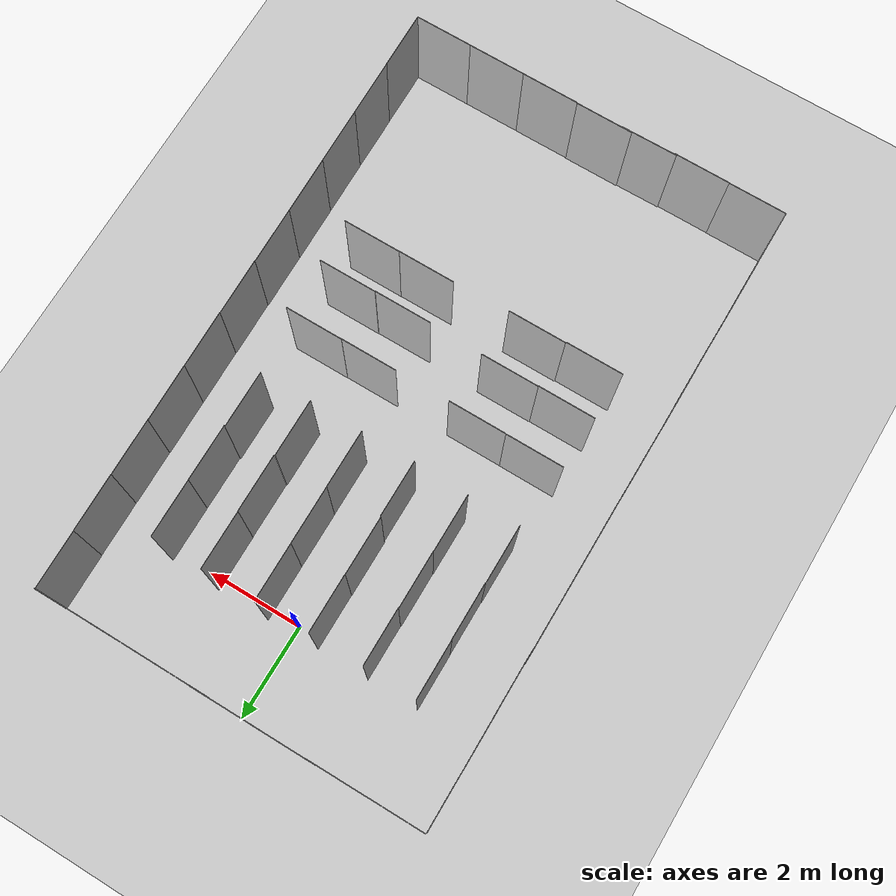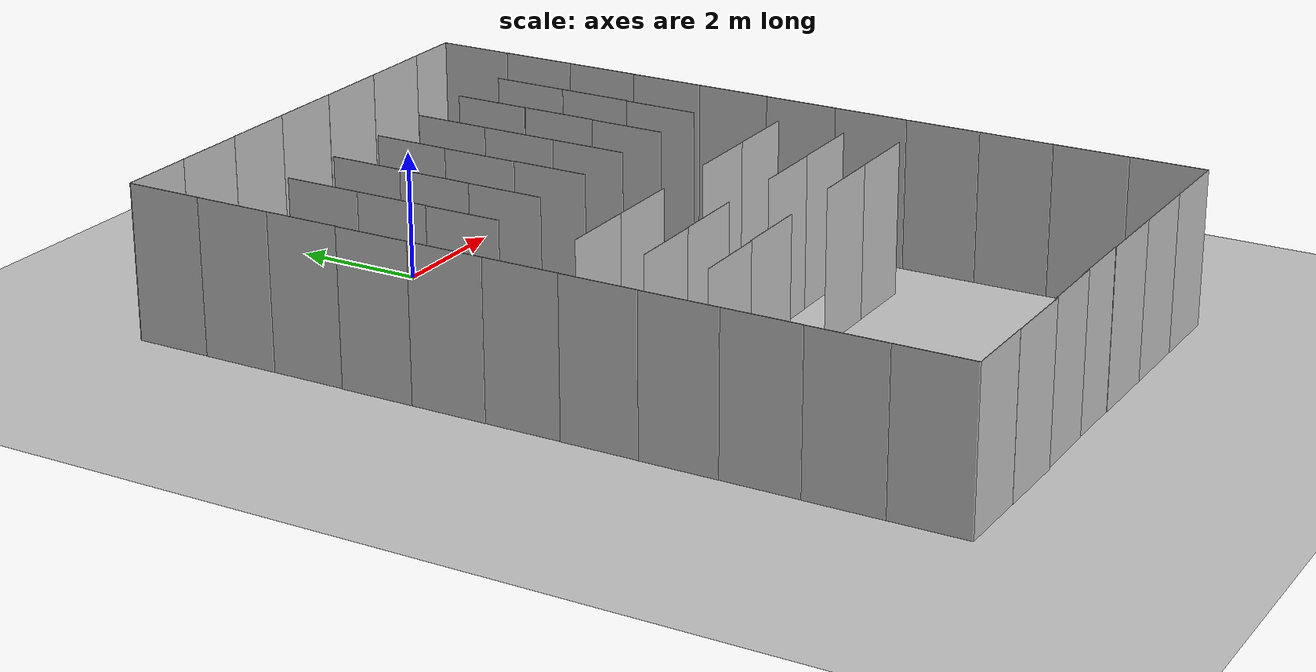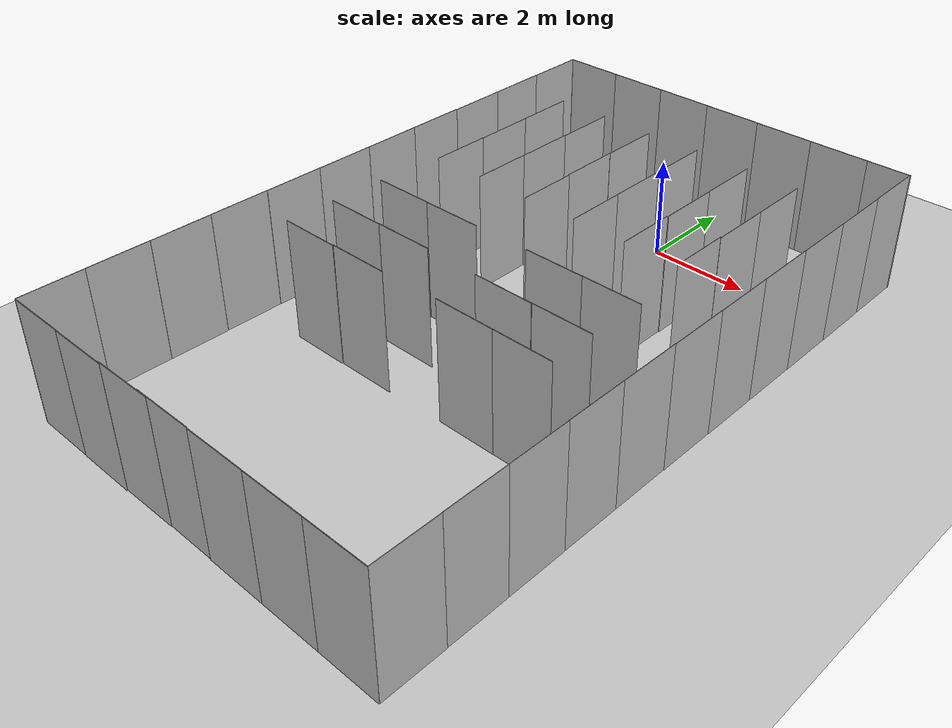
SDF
<sdf version="1.6">
 <world name="default">
  <light name="sun" type="directional">
   <pose>0 0 10 0 -0 0</pose>
   <diffuse>0.8 0.8 0.8 1</diffuse>
   <specular>0.2 0.2 0.2 1</specular>
   <attenuation>
    <range>1000</range>
    <constant>0.9</constant>
    <linear>0.01</linear>
    <quadratic>0.001</quadratic>
   </attenuation>
   <direction>-0.5 0.1 -0.9</direction>
  </light>
  <model name="ground_plane">
   <static>1</static>
   <link name="link">
    <collision name="collision">
     <geometry><plane><normal>0 0 1</normal><size>100 100</size></plane></geometry>
     <surface><friction><ode><mu>100</mu><mu2>50</mu2></ode></friction></surface>
    </collision>
    <visual name="visual">
     <cast_shadows>0</cast_shadows>
     <geometry><plane><normal>0 0 1</normal><size>100 100</size></plane></geometry>
     <material>
      <script><uri>file://media/materials/scripts/gazebo.material</uri><name>Gazebo/Grey</name></script>
     </material>
    </visual>
   </link>
  </model>
  <gravity>0 0 -9.8</gravity>
  <magnetic_field>6e-06 2.3e-05 -4.2e-05</magnetic_field>
  <atmosphere type="adiabatic"/>
  <physics name="default_physics" default="0" type="ode">
   <max_step_size>0.001</max_step_size>
   <real_time_factor>1</real_time_factor>
   <real_time_update_rate>1000</real_time_update_rate>
  </physics>
  <scene><ambient>0.4 0.4 0.4 1</ambient><background>0.7 0.7 0.7 1</background><shadows>1</shadows></scene>
  <spherical_coordinates>
   <surface_model>EARTH_WGS84</surface_model>
   <latitude_deg>0</latitude_deg>
   <longitude_deg>0</longitude_deg>
   <elevation>0</elevation>
   <heading_deg>0</heading_deg>
  </spherical_coordinates>
  <model name="nist_maze_wall_240">
   <static>1</static>
   <link name="nist__maze_wall_240_link">
    <collision name="collision">
     <geometry>
      <mesh><uri>model://nist_maze_wall_240/meshes/nist_maze_wall_240.dae</uri><scale>1 1 1</scale></mesh>
     </geometry>
    </collision>
    <visual name="visual">
     <geometry>
      <mesh><uri>model://nist_maze_wall_240/meshes/nist_maze_wall_240.dae</uri><scale>1 1 1</scale></mesh>
     </geometry>
    </visual>
   </link>
   <pose>-3.4014 1.39031 0 0 -0 0</pose>
  </model>
  <model name="nist_maze_wall_240_clone">
   <static>1</static>
   <link name="nist__maze_wall_240_link">
    <collision name="collision">
     <geometry>
      <mesh><uri>model://nist_maze_wall_240/meshes/nist_maze_wall_240.dae</uri><scale>1 1 1</scale></mesh>
     </geometry>
    </collision>
    <visual name="visual">
     <geometry>
      <mesh><uri>model://nist_maze_wall_240/meshes/nist_maze_wall_240.dae</uri><scale>1 1 1</scale></mesh>
     </geometry>
    </visual>
   </link>
   <pose>-2.21285 1.3925 0 0 -0 0</pose>
  </model>
  <model name="nist_maze_wall_240_clone_0">
   <static>1</static>
   <link name="nist__maze_wall_240_link">
    <collision name="collision">
     <geometry>
      <mesh><uri>model://nist_maze_wall_240/meshes/nist_maze_wall_240.dae</uri><scale>1 1 1</scale></mesh>
     </geometry>
    </collision>
    <visual name="visual">
     <geometry>
      <mesh><uri>model://nist_maze_wall_240/meshes/nist_maze_wall_240.dae</uri><scale>1 1 1</scale></mesh>
     </geometry>
    </visual>
   </link>
   <pose>-1.04177 1.3981 0 0 -0 0</pose>
  </model>
  <model name="nist_maze_wall_240_clone_1">
   <static>1</static>
   <link name="nist__maze_wall_240_link">
    <collision name="collision">
     <geometry>
      <mesh><uri>model://nist_maze_wall_240/meshes/nist_maze_wall_240.dae</uri><scale>1 1 1</scale></mesh>
     </geometry>
    </collision>
    <visual name="visual">
     <geometry>
      <mesh><uri>model://nist_maze_wall_240/meshes/nist_maze_wall_240.dae</uri><scale>1 1 1</scale></mesh>
     </geometry>
    </visual>
   </link>
   <pose>0.143059 1.39665 0 0 -0 0</pose>
  </model>
  <model name="nist_maze_wall_240_clone_1_clone">
   <static>1</static>
   <link name="nist__maze_wall_240_link">
    <collision name="collision">
     <geometry>
      <mesh><uri>model://nist_maze_wall_240/meshes/nist_maze_wall_240.dae</uri><scale>1 1 1</scale></mesh>
     </geometry>
    </collision>
    <visual name="visual">
     <geometry>
      <mesh><uri>model://nist_maze_wall_240/meshes/nist_maze_wall_240.dae</uri><scale>1 1 1</scale></mesh>
     </geometry>
    </visual>
   </link>
   <pose>1.33923 1.39098 0 0 -0 0</pose>
  </model>
  <model name="nist_maze_wall_240_clone_1_clone_clone">
   <static>1</static>
   <link name="nist__maze_wall_240_link">
    <collision name="collision">
     <geometry>
      <mesh><uri>model://nist_maze_wall_240/meshes/nist_maze_wall_240.dae</uri><scale>1 1 1</scale></mesh>
     </geometry>
    </collision>
    <visual name="visual">
     <geometry>
      <mesh><uri>model://nist_maze_wall_240/meshes/nist_maze_wall_240.dae</uri><scale>1 1 1</scale></mesh>
     </geometry>
    </visual>
   </link>
   <pose>2.53802 1.38973 0 0 -0 0</pose>
  </model>
  <model name="nist_maze_wall_240_clone_1_clone_clone_clone">
   <static>1</static>
   <link name="nist__maze_wall_240_link">
    <collision name="collision">
     <geometry>
      <mesh><uri>model://nist_maze_wall_240/meshes/nist_maze_wall_240.dae</uri><scale>1 1 1</scale></mesh>
     </geometry>
    </collision>
    <visual name="visual">
     <geometry>
      <mesh><uri>model://nist_maze_wall_240/meshes/nist_maze_wall_240.dae</uri><scale>1 1 1</scale></mesh>
     </geometry>
    </visual>
   </link>
   <pose>3.40104 1.39153 0 0 -0 0</pose>
  </model>
  <model name="nist_maze_wall_240_clone_1_clone_clone_clone_clone">
   <static>1</static>
   <link name="nist__maze_wall_240_link">
    <collision name="collision">
     <geometry>
      <mesh><uri>model://nist_maze_wall_240/meshes/nist_maze_wall_240.dae</uri><scale>1 1 1</scale></mesh>
     </geometry>
    </collision>
    <visual name="visual">
     <geometry>
      <mesh><uri>model://nist_maze_wall_240/meshes/nist_maze_wall_240.dae</uri><scale>1 1 1</scale></mesh>
     </geometry>
    </visual>
   </link>
   <pose>4.58461 1.407 0 0 -0 1.5789</pose>
  </model>
  <model name="nist_maze_wall_240_clone_1_clone_clone_clone_clone_clone">
   <static>1</static>
   <link name="nist__maze_wall_240_link">
    <collision name="collision">
     <geometry>
      <mesh><uri>model://nist_maze_wall_240/meshes/nist_maze_wall_240.dae</uri><scale>1 1 1</scale></mesh>
     </geometry>
    </collision>
    <visual name="visual">
     <geometry>
      <mesh><uri>model://nist_maze_wall_240/meshes/nist_maze_wall_240.dae</uri><scale>1 1 1</scale></mesh>
     </geometry>
    </visual>
   </link>
   <pose>4.59927 0.212213 0 0 -0 1.5789</pose>
  </model>
  <model name="nist_maze_wall_240_clone_1_clone_clone_clone_clone_clone_0">
   <static>1</static>
   <link name="nist__maze_wall_240_link">
    <collision name="collision">
     <geometry>
      <mesh><uri>model://nist_maze_wall_240/meshes/nist_maze_wall_240.dae</uri><scale>1 1 1</scale></mesh>
     </geometry>
    </collision>
    <visual name="visual">
     <geometry>
      <mesh><uri>model://nist_maze_wall_240/meshes/nist_maze_wall_240.dae</uri><scale>1 1 1</scale></mesh>
     </geometry>
    </visual>
   </link>
   <pose>4.60567 -0.981303 0 0 -0 1.5789</pose>
  </model>
  <model name="nist_maze_wall_240_clone_1_clone_clone_clone_clone_clone_1">
   <static>1</static>
   <link name="nist__maze_wall_240_link">
    <collision name="collision">
     <geometry>
      <mesh><uri>model://nist_maze_wall_240/meshes/nist_maze_wall_240.dae</uri><scale>1 1 1</scale></mesh>
     </geometry>
    </collision>
    <visual name="visual">
     <geometry>
      <mesh><uri>model://nist_maze_wall_240/meshes/nist_maze_wall_240.dae</uri><scale>1 1 1</scale></mesh>
     </geometry>
    </visual>
   </link>
   <pose>4.61024 -2.15747 0 0 -0 1.5789</pose>
  </model>
  <model name="nist_maze_wall_240_clone_1_clone_clone_clone_clone_clone_1_clone">
   <static>1</static>
   <link name="nist__maze_wall_240_link">
    <collision name="collision">
     <geometry>
      <mesh><uri>model://nist_maze_wall_240/meshes/nist_maze_wall_240.dae</uri><scale>1 1 1</scale></mesh>
     </geometry>
    </collision>
    <visual name="visual">
     <geometry>
      <mesh><uri>model://nist_maze_wall_240/meshes/nist_maze_wall_240.dae</uri><scale>1 1 1</scale></mesh>
     </geometry>
    </visual>
   </link>
   <pose>4.61841 -3.35533 0 0 -0 1.5789</pose>
  </model>
  <model name="nist_maze_wall_240_clone_1_clone_clone_clone_clone_clone_1_clone_0">
   <static>1</static>
   <link name="nist__maze_wall_240_link">
    <collision name="collision">
     <geometry>
      <mesh><uri>model://nist_maze_wall_240/meshes/nist_maze_wall_240.dae</uri><scale>1 1 1</scale></mesh>
     </geometry>
    </collision>
    <visual name="visual">
     <geometry>
      <mesh><uri>model://nist_maze_wall_240/meshes/nist_maze_wall_240.dae</uri><scale>1 1 1</scale></mesh>
     </geometry>
    </visual>
   </link>
   <pose>4.62233 -4.5414 0 0 -0 1.5789</pose>
  </model>
  <model name="nist_maze_wall_240_clone_1_clone_clone_clone_clone_clone_1_clone_1">
   <static>1</static>
   <link name="nist__maze_wall_240_link">
    <collision name="collision">
     <geometry>
      <mesh><uri>model://nist_maze_wall_240/meshes/nist_maze_wall_240.dae</uri><scale>1 1 1</scale></mesh>
     </geometry>
    </collision>
    <visual name="visual">
     <geometry>
      <mesh><uri>model://nist_maze_wall_240/meshes/nist_maze_wall_240.dae</uri><scale>1 1 1</scale></mesh>
     </geometry>
    </visual>
   </link>
   <pose>4.62426 -5.72673 0 0 -0 1.5789</pose>
  </model>
  <model name="nist_maze_wall_240_clone_1_clone_clone_clone_clone_clone_1_clone_2">
   <static>1</static>
   <link name="nist__maze_wall_240_link">
    <collision name="collision">
     <geometry>
      <mesh><uri>model://nist_maze_wall_240/meshes/nist_maze_wall_240.dae</uri><scale>1 1 1</scale></mesh>
     </geometry>
    </collision>
    <visual name="visual">
     <geometry>
      <mesh><uri>model://nist_maze_wall_240/meshes/nist_maze_wall_240.dae</uri><scale>1 1 1</scale></mesh>
     </geometry>
    </visual>
   </link>
   <pose>4.63267 -6.92141 0 0 -0 1.5789</pose>
  </model>
  <model name="nist_maze_wall_240_clone_1_clone_clone_clone_clone_clone_1_clone_3">
   <static>1</static>
   <link name="nist__maze_wall_240_link">
    <collision name="collision">
     <geometry>
      <mesh><uri>model://nist_maze_wall_240/meshes/nist_maze_wall_240.dae</uri><scale>1 1 1</scale></mesh>
     </geometry>
    </collision>
    <visual name="visual">
     <geometry>
      <mesh><uri>model://nist_maze_wall_240/meshes/nist_maze_wall_240.dae</uri><scale>1 1 1</scale></mesh>
     </geometry>
    </visual>
   </link>
   <pose>4.64532 -8.09592 0 0 -0 1.5789</pose>
  </model>
  <model name="nist_maze_wall_240_clone_1_clone_clone_clone_clone_clone_1_clone_4">
   <static>1</static>
   <link name="nist__maze_wall_240_link">
    <collision name="collision">
     <geometry>
      <mesh><uri>model://nist_maze_wall_240/meshes/nist_maze_wall_240.dae</uri><scale>1 1 1</scale></mesh>
     </geometry>
    </collision>
    <visual name="visual">
     <geometry>
      <mesh><uri>model://nist_maze_wall_240/meshes/nist_maze_wall_240.dae</uri><scale>1 1 1</scale></mesh>
     </geometry>
    </visual>
   </link>
   <pose>4.65683 -9.27469 0 0 -0 1.5789</pose>
  </model>
  <model name="nist_maze_wall_240_clone_1_clone_clone_clone_clone_clone_1_clone_5">
   <static>1</static>
   <link name="nist__maze_wall_240_link">
    <collision name="collision">
     <geometry>
      <mesh><uri>model://nist_maze_wall_240/meshes/nist_maze_wall_240.dae</uri><scale>1 1 1</scale></mesh>
     </geometry>
    </collision>
    <visual name="visual">
     <geometry>
      <mesh><uri>model://nist_maze_wall_240/meshes/nist_maze_wall_240.dae</uri><scale>1 1 1</scale></mesh>
     </geometry>
    </visual>
   </link>
   <pose>4.67054 -10.4673 0 0 -0 1.5789</pose>
  </model>
  <model name="nist_maze_wall_240_clone_1_clone_clone_clone_clone_clone_2">
   <static>1</static>
   <link name="nist__maze_wall_240_link">
    <collision name="collision">
     <geometry>
      <mesh><uri>model://nist_maze_wall_240/meshes/nist_maze_wall_240.dae</uri><scale>1 1 1</scale></mesh>
     </geometry>
    </collision>
    <visual name="visual">
     <geometry>
      <mesh><uri>model://nist_maze_wall_240/meshes/nist_maze_wall_240.dae</uri><scale>1 1 1</scale></mesh>
     </geometry>
    </visual>
   </link>
   <pose>-3.39755 1.3839 0 0 -0 1.57297</pose>
  </model>
  <model name="nist_maze_wall_240_clone_1_clone_clone_clone_clone_clone_2_clone">
   <static>1</static>
   <link name="nist__maze_wall_240_link">
    <collision name="collision">
     <geometry>
      <mesh><uri>model://nist_maze_wall_240/meshes/nist_maze_wall_240.dae</uri><scale>1 1 1</scale></mesh>
     </geometry>
    </collision>
    <visual name="visual">
     <geometry>
      <mesh><uri>model://nist_maze_wall_240/meshes/nist_maze_wall_240.dae</uri><scale>1 1 1</scale></mesh>
     </geometry>
    </visual>
   </link>
   <pose>-3.39737 0.195369 0 0 -0 1.57297</pose>
  </model>
  <model name="nist_maze_wall_240_clone_1_clone_clone_clone_clone_clone_2_clone_0">
   <static>1</static>
   <link name="nist__maze_wall_240_link">
    <collision name="collision">
     <geometry>
      <mesh><uri>model://nist_maze_wall_240/meshes/nist_maze_wall_240.dae</uri><scale>1 1 1</scale></mesh>
     </geometry>
    </collision>
    <visual name="visual">
     <geometry>
      <mesh><uri>model://nist_maze_wall_240/meshes/nist_maze_wall_240.dae</uri><scale>1 1 1</scale></mesh>
     </geometry>
    </visual>
   </link>
   <pose>-3.3925 -1.00108 0 0 -0 1.57297</pose>
  </model>
  <model name="nist_maze_wall_240_clone_1_clone_clone_clone_clone_clone_2_clone_1">
   <static>1</static>
   <link name="nist__maze_wall_240_link">
    <collision name="collision">
     <geometry>
      <mesh><uri>model://nist_maze_wall_240/meshes/nist_maze_wall_240.dae</uri><scale>1 1 1</scale></mesh>
     </geometry>
    </collision>
    <visual name="visual">
     <geometry>
      <mesh><uri>model://nist_maze_wall_240/meshes/nist_maze_wall_240.dae</uri><scale>1 1 1</scale></mesh>
     </geometry>
    </visual>
   </link>
   <pose>-3.40013 -2.17035 0 0 -0 1.57297</pose>
  </model>
  <model name="nist_maze_wall_240_clone_1_clone_clone_clone_clone_clone_2_clone_1_clone">
   <static>1</static>
   <link name="nist__maze_wall_240_link">
    <collision name="collision">
     <geometry>
      <mesh><uri>model://nist_maze_wall_240/meshes/nist_maze_wall_240.dae</uri><scale>1 1 1</scale></mesh>
     </geometry>
    </collision>
    <visual name="visual">
     <geometry>
      <mesh><uri>model://nist_maze_wall_240/meshes/nist_maze_wall_240.dae</uri><scale>1 1 1</scale></mesh>
     </geometry>
    </visual>
   </link>
   <pose>-3.39822 -3.33433 0 0 -0 1.57297</pose>
  </model>
  <model name="nist_maze_wall_240_clone_1_clone_clone_clone_clone_clone_2_clone_1_clone_0">
   <static>1</static>
   <link name="nist__maze_wall_240_link">
    <collision name="collision">
     <geometry>
      <mesh><uri>model://nist_maze_wall_240/meshes/nist_maze_wall_240.dae</uri><scale>1 1 1</scale></mesh>
     </geometry>
    </collision>
    <visual name="visual">
     <geometry>
      <mesh><uri>model://nist_maze_wall_240/meshes/nist_maze_wall_240.dae</uri><scale>1 1 1</scale></mesh>
     </geometry>
    </visual>
   </link>
   <pose>-3.39576 -4.52928 0 0 -0 1.57297</pose>
  </model>
  <model name="nist_maze_wall_240_clone_1_clone_clone_clone_clone_clone_2_clone_1_clone_1">
   <static>1</static>
   <link name="nist__maze_wall_240_link">
    <collision name="collision">
     <geometry>
      <mesh><uri>model://nist_maze_wall_240/meshes/nist_maze_wall_240.dae</uri><scale>1 1 1</scale></mesh>
     </geometry>
    </collision>
    <visual name="visual">
     <geometry>
      <mesh><uri>model://nist_maze_wall_240/meshes/nist_maze_wall_240.dae</uri><scale>1 1 1</scale></mesh>
     </geometry>
    </visual>
   </link>
   <pose>-3.39864 -5.71652 0 0 -0 1.57297</pose>
  </model>
  <model name="nist_maze_wall_240_clone_1_clone_clone_clone_clone_clone_2_clone_1_clone_2">
   <static>1</static>
   <link name="nist__maze_wall_240_link">
    <collision name="collision">
     <geometry>
      <mesh><uri>model://nist_maze_wall_240/meshes/nist_maze_wall_240.dae</uri><scale>1 1 1</scale></mesh>
     </geometry>
    </collision>
    <visual name="visual">
     <geometry>
      <mesh><uri>model://nist_maze_wall_240/meshes/nist_maze_wall_240.dae</uri><scale>1 1 1</scale></mesh>
     </geometry>
    </visual>
   </link>
   <pose>-3.40108 -6.91635 0 0 -0 1.57297</pose>
  </model>
  <model name="nist_maze_wall_240_clone_1_clone_clone_clone_clone_clone_2_clone_1_clone_3">
   <static>1</static>
   <link name="nist__maze_wall_240_link">
    <collision name="collision">
     <geometry>
      <mesh><uri>model://nist_maze_wall_240/meshes/nist_maze_wall_240.dae</uri><scale>1 1 1</scale></mesh>
     </geometry>
    </collision>
    <visual name="visual">
     <geometry>
      <mesh><uri>model://nist_maze_wall_240/meshes/nist_maze_wall_240.dae</uri><scale>1 1 1</scale></mesh>
     </geometry>
    </visual>
   </link>
   <pose>-3.39613 -8.10692 0 0 -0 1.57297</pose>
  </model>
  <model name="nist_maze_wall_240_clone_1_clone_clone_clone_clone_clone_2_clone_1_clone_4">
   <static>1</static>
   <link name="nist__maze_wall_240_link">
    <collision name="collision">
     <geometry>
      <mesh><uri>model://nist_maze_wall_240/meshes/nist_maze_wall_240.dae</uri><scale>1 1 1</scale></mesh>
     </geometry>
    </collision>
    <visual name="visual">
     <geometry>
      <mesh><uri>model://nist_maze_wall_240/meshes/nist_maze_wall_240.dae</uri><scale>1 1 1</scale></mesh>
     </geometry>
    </visual>
   </link>
   <pose>-3.39877 -9.30524 0 0 -0 1.57297</pose>
  </model>
  <model name="nist_maze_wall_240_clone_1_clone_clone_clone_clone_clone_2_clone_1_clone_5">
   <static>1</static>
   <link name="nist__maze_wall_240_link">
    <collision name="collision">
     <geometry>
      <mesh><uri>model://nist_maze_wall_240/meshes/nist_maze_wall_240.dae</uri><scale>1 1 1</scale></mesh>
     </geometry>
    </collision>
    <visual name="visual">
     <geometry>
      <mesh><uri>model://nist_maze_wall_240/meshes/nist_maze_wall_240.dae</uri><scale>1 1 1</scale></mesh>
     </geometry>
    </visual>
   </link>
   <pose>-3.39466 -10.4936 0 0 -0 1.57297</pose>
  </model>
  <model name="nist_maze_wall_240_clone_1_clone_0">
   <static>1</static>
   <link name="nist__maze_wall_240_link">
    <collision name="collision">
     <geometry>
      <mesh><uri>model://nist_maze_wall_240/meshes/nist_maze_wall_240.dae</uri><scale>1 1 1</scale></mesh>
     </geometry>
    </collision>
    <visual name="visual">
     <geometry>
      <mesh><uri>model://nist_maze_wall_240/meshes/nist_maze_wall_240.dae</uri><scale>1 1 1</scale></mesh>
     </geometry>
    </visual>
   </link>
   <pose>3.48103 -11.6696 0 0 -0 0</pose>
  </model>
  <model name="nist_maze_wall_240_clone_1_clone_1">
   <static>1</static>
   <link name="nist__maze_wall_240_link">
    <collision name="collision">
     <geometry>
      <mesh><uri>model://nist_maze_wall_240/meshes/nist_maze_wall_240.dae</uri><scale>1 1 1</scale></mesh>
     </geometry>
    </collision>
    <visual name="visual">
     <geometry>
      <mesh><uri>model://nist_maze_wall_240/meshes/nist_maze_wall_240.dae</uri><scale>1 1 1</scale></mesh>
     </geometry>
    </visual>
   </link>
   <pose>2.28917 -11.6689 0 0 -0 0</pose>
  </model>
  <model name="nist_maze_wall_240_clone_1_clone_2">
   <static>1</static>
   <link name="nist__maze_wall_240_link">
    <collision name="collision">
     <geometry>
      <mesh><uri>model://nist_maze_wall_240/meshes/nist_maze_wall_240.dae</uri><scale>1 1 1</scale></mesh>
     </geometry>
    </collision>
    <visual name="visual">
     <geometry>
      <mesh><uri>model://nist_maze_wall_240/meshes/nist_maze_wall_240.dae</uri><scale>1 1 1</scale></mesh>
     </geometry>
    </visual>
   </link>
   <pose>1.09501 -11.6679 0 0 -0 0</pose>
  </model>
  <model name="nist_maze_wall_240_clone_1_clone_3">
   <static>1</static>
   <link name="nist__maze_wall_240_link">
    <collision name="collision">
     <geometry>
      <mesh><uri>model://nist_maze_wall_240/meshes/nist_maze_wall_240.dae</uri><scale>1 1 1</scale></mesh>
     </geometry>
    </collision>
    <visual name="visual">
     <geometry>
      <mesh><uri>model://nist_maze_wall_240/meshes/nist_maze_wall_240.dae</uri><scale>1 1 1</scale></mesh>
     </geometry>
    </visual>
   </link>
   <pose>-0.104106 -11.6587 0 0 -0 0</pose>
  </model>
  <model name="nist_maze_wall_240_clone_1_clone_4">
   <static>1</static>
   <link name="nist__maze_wall_240_link">
    <collision name="collision">
     <geometry>
      <mesh><uri>model://nist_maze_wall_240/meshes/nist_maze_wall_240.dae</uri><scale>1 1 1</scale></mesh>
     </geometry>
    </collision>
    <visual name="visual">
     <geometry>
      <mesh><uri>model://nist_maze_wall_240/meshes/nist_maze_wall_240.dae</uri><scale>1 1 1</scale></mesh>
     </geometry>
    </visual>
   </link>
   <pose>-3.38792 -11.6911 0 0 -0 0</pose>
  </model>
  <model name="nist_maze_wall_240_clone_1_clone_5">
   <static>1</static>
   <link name="nist__maze_wall_240_link">
    <collision name="collision">
     <geometry>
      <mesh><uri>model://nist_maze_wall_240/meshes/nist_maze_wall_240.dae</uri><scale>1 1 1</scale></mesh>
     </geometry>
    </collision>
    <visual name="visual">
     <geometry>
      <mesh><uri>model://nist_maze_wall_240/meshes/nist_maze_wall_240.dae</uri><scale>1 1 1</scale></mesh>
     </geometry>
    </visual>
   </link>
   <pose>-2.19304 -11.6963 0 0 -0 0</pose>
  </model>
  <model name="nist_maze_wall_240_clone_1_clone_6">
   <static>1</static>
   <link name="nist__maze_wall_240_link">
    <collision name="collision">
     <geometry>
      <mesh><uri>model://nist_maze_wall_240/meshes/nist_maze_wall_240.dae</uri><scale>1 1 1</scale></mesh>
     </geometry>
    </collision>
    <visual name="visual">
     <geometry>
      <mesh><uri>model://nist_maze_wall_240/meshes/nist_maze_wall_240.dae</uri><scale>1 1 1</scale></mesh>
     </geometry>
    </visual>
   </link>
   <pose>-1.05476 -11.6746 0 0 -0 0.010136</pose>
  </model>
  <model name="nist_maze_wall_240_clone_1_clone_clone_clone_clone_clone_2_clone_0_clone">
   <static>1</static>
   <link name="nist__maze_wall_240_link">
    <collision name="collision">
     <geometry>
      <mesh><uri>model://nist_maze_wall_240/meshes/nist_maze_wall_240.dae</uri><scale>1 1 1</scale></mesh>
     </geometry>
    </collision>
    <visual name="visual">
     <geometry>
      <mesh><uri>model://nist_maze_wall_240/meshes/nist_maze_wall_240.dae</uri><scale>1 1 1</scale></mesh>
     </geometry>
    </visual>
   </link>
   <pose>0.079738 -0.422873 0 0 -0 1.57297</pose>
  </model>
  <model name="nist_maze_wall_240_clone_1_clone_clone_clone_clone_clone_2_clone_0_clone_clone">
   <static>1</static>
   <link name="nist__maze_wall_240_link">
    <collision name="collision">
     <geometry>
      <mesh><uri>model://nist_maze_wall_240/meshes/nist_maze_wall_240.dae</uri><scale>1 1 1</scale></mesh>
     </geometry>
    </collision>
    <visual name="visual">
     <geometry>
      <mesh><uri>model://nist_maze_wall_240/meshes/nist_maze_wall_240.dae</uri><scale>1 1 1</scale></mesh>
     </geometry>
    </visual>
   </link>
   <pose>1.18545 -0.398914 0 0 -0 1.57297</pose>
  </model>
  <model name="nist_maze_wall_240_clone_1_clone_clone_clone_clone_clone_2_clone_0_clone_clone_0">
   <static>1</static>
   <link name="nist__maze_wall_240_link">
    <collision name="collision">
     <geometry>
      <mesh><uri>model://nist_maze_wall_240/meshes/nist_maze_wall_240.dae</uri><scale>1 1 1</scale></mesh>
     </geometry>
    </collision>
    <visual name="visual">
     <geometry>
      <mesh><uri>model://nist_maze_wall_240/meshes/nist_maze_wall_240.dae</uri><scale>1 1 1</scale></mesh>
     </geometry>
    </visual>
   </link>
   <pose>0.076523 -1.61871 0 0 -0 1.57297</pose>
  </model>
  <model name="nist_maze_wall_240_clone_1_clone_clone_clone_clone_clone_2_clone_0_clone_clone_1">
   <static>1</static>
   <link name="nist__maze_wall_240_link">
    <collision name="collision">
     <geometry>
      <mesh><uri>model://nist_maze_wall_240/meshes/nist_maze_wall_240.dae</uri><scale>1 1 1</scale></mesh>
     </geometry>
    </collision>
    <visual name="visual">
     <geometry>
      <mesh><uri>model://nist_maze_wall_240/meshes/nist_maze_wall_240.dae</uri><scale>1 1 1</scale></mesh>
     </geometry>
    </visual>
   </link>
   <pose>0.095116 -2.80791 0 0 -0 1.57297</pose>
  </model>
  <model name="nist_maze_wall_240_clone_1_clone_clone_clone_clone_clone_2_clone_0_clone_clone_clone">
   <static>1</static>
   <link name="nist__maze_wall_240_link">
    <collision name="collision">
     <geometry>
      <mesh><uri>model://nist_maze_wall_240/meshes/nist_maze_wall_240.dae</uri><scale>1 1 1</scale></mesh>
     </geometry>
    </collision>
    <visual name="visual">
     <geometry>
      <mesh><uri>model://nist_maze_wall_240/meshes/nist_maze_wall_240.dae</uri><scale>1 1 1</scale></mesh>
     </geometry>
    </visual>
   </link>
   <pose>1.18944 -1.58523 0 0 -0 1.57297</pose>
  </model>
  <model name="nist_maze_wall_240_clone_1_clone_clone_clone_clone_clone_2_clone_0_clone_clone_clone_0">
   <static>1</static>
   <link name="nist__maze_wall_240_link">
    <collision name="collision">
     <geometry>
      <mesh><uri>model://nist_maze_wall_240/meshes/nist_maze_wall_240.dae</uri><scale>1 1 1</scale></mesh>
     </geometry>
    </collision>
    <visual name="visual">
     <geometry>
      <mesh><uri>model://nist_maze_wall_240/meshes/nist_maze_wall_240.dae</uri><scale>1 1 1</scale></mesh>
     </geometry>
    </visual>
   </link>
   <pose>1.19521 -2.78256 0 0 -0 1.57297</pose>
  </model>
  <model name="nist_maze_wall_240_clone_1_clone_clone_clone_clone_clone_2_clone_0_clone_clone_clone_1">
   <static>1</static>
   <link name="nist__maze_wall_240_link">
    <collision name="collision">
     <geometry>
      <mesh><uri>model://nist_maze_wall_240/meshes/nist_maze_wall_240.dae</uri><scale>1 1 1</scale></mesh>
     </geometry>
    </collision>
    <visual name="visual">
     <geometry>
      <mesh><uri>model://nist_maze_wall_240/meshes/nist_maze_wall_240.dae</uri><scale>1 1 1</scale></mesh>
     </geometry>
    </visual>
   </link>
   <pose>2.29598 -0.391459 0 0 -0 1.57297</pose>
  </model>
  <model name="nist_maze_wall_240_clone_1_clone_clone_clone_clone_clone_2_clone_0_clone_clone_clone_1_clone">
   <static>1</static>
   <link name="nist__maze_wall_240_link">
    <collision name="collision">
     <geometry>
      <mesh><uri>model://nist_maze_wall_240/meshes/nist_maze_wall_240.dae</uri><scale>1 1 1</scale></mesh>
     </geometry>
    </collision>
    <visual name="visual">
     <geometry>
      <mesh><uri>model://nist_maze_wall_240/meshes/nist_maze_wall_240.dae</uri><scale>1 1 1</scale></mesh>
     </geometry>
    </visual>
   </link>
   <pose>2.30511 -1.59466 0 0 -0 1.57297</pose>
  </model>
  <model name="nist_maze_wall_240_clone_1_clone_clone_clone_clone_clone_2_clone_0_clone_clone_clone_1_clone_0">
   <static>1</static>
   <link name="nist__maze_wall_240_link">
    <collision name="collision">
     <geometry>
      <mesh><uri>model://nist_maze_wall_240/meshes/nist_maze_wall_240.dae</uri><scale>1 1 1</scale></mesh>
     </geometry>
    </collision>
    <visual name="visual">
     <geometry>
      <mesh><uri>model://nist_maze_wall_240/meshes/nist_maze_wall_240.dae</uri><scale>1 1 1</scale></mesh>
     </geometry>
    </visual>
   </link>
   <pose>2.29232 -2.79585 0 0 -0 1.57297</pose>
  </model>
  <model name="nist_maze_wall_240_clone_1_clone_clone_clone_clone_clone_2_clone_0_clone_clone_clone_1_clone_1">
   <static>1</static>
   <link name="nist__maze_wall_240_link">
    <collision name="collision">
     <geometry>
      <mesh><uri>model://nist_maze_wall_240/meshes/nist_maze_wall_240.dae</uri><scale>1 1 1</scale></mesh>
     </geometry>
    </collision>
    <visual name="visual">
     <geometry>
      <mesh><uri>model://nist_maze_wall_240/meshes/nist_maze_wall_240.dae</uri><scale>1 1 1</scale></mesh>
     </geometry>
    </visual>
   </link>
   <pose>3.36658 -0.421359 0 0 -0 1.57297</pose>
  </model>
  <model name="nist_maze_wall_240_clone_1_clone_clone_clone_clone_clone_2_clone_0_clone_clone_clone_1_clone_1_clone">
   <static>1</static>
   <link name="nist__maze_wall_240_link">
    <collision name="collision">
     <geometry>
      <mesh><uri>model://nist_maze_wall_240/meshes/nist_maze_wall_240.dae</uri><scale>1 1 1</scale></mesh>
     </geometry>
    </collision>
    <visual name="visual">
     <geometry>
      <mesh><uri>model://nist_maze_wall_240/meshes/nist_maze_wall_240.dae</uri><scale>1 1 1</scale></mesh>
     </geometry>
    </visual>
   </link>
   <pose>3.37013 -1.59699 0 0 -0 1.57297</pose>
  </model>
  <model name="nist_maze_wall_240_clone_1_clone_clone_clone_clone_clone_2_clone_0_clone_clone_clone_1_clone_1_clone_0">
   <static>1</static>
   <link name="nist__maze_wall_240_link">
    <collision name="collision">
     <geometry>
      <mesh><uri>model://nist_maze_wall_240/meshes/nist_maze_wall_240.dae</uri><scale>1 1 1</scale></mesh>
     </geometry>
    </collision>
    <visual name="visual">
     <geometry>
      <mesh><uri>model://nist_maze_wall_240/meshes/nist_maze_wall_240.dae</uri><scale>1 1 1</scale></mesh>
     </geometry>
    </visual>
   </link>
   <pose>3.35309 -2.77063 0 0 -0 1.57297</pose>
  </model>
  <model name="nist_maze_wall_240_clone_1_clone_clone_clone_clone_clone_2_clone_0_clone_clone_2">
   <static>1</static>
   <link name="nist__maze_wall_240_link">
    <collision name="collision">
     <geometry>
      <mesh><uri>model://nist_maze_wall_240/meshes/nist_maze_wall_240.dae</uri><scale>1 1 1</scale></mesh>
     </geometry>
    </collision>
    <visual name="visual">
     <geometry>
      <mesh><uri>model://nist_maze_wall_240/meshes/nist_maze_wall_240.dae</uri><scale>1 1 1</scale></mesh>
     </geometry>
    </visual>
   </link>
   <pose>-1.02683 -0.422725 0 0 -0 1.57297</pose>
  </model>
  <model name="nist_maze_wall_240_clone_1_clone_clone_clone_clone_clone_2_clone_0_clone_clone_2_clone">
   <static>1</static>
   <link name="nist__maze_wall_240_link">
    <collision name="collision">
     <geometry>
      <mesh><uri>model://nist_maze_wall_240/meshes/nist_maze_wall_240.dae</uri><scale>1 1 1</scale></mesh>
     </geometry>
    </collision>
    <visual name="visual">
     <geometry>
      <mesh><uri>model://nist_maze_wall_240/meshes/nist_maze_wall_240.dae</uri><scale>1 1 1</scale></mesh>
     </geometry>
    </visual>
   </link>
   <pose>-1.03437 -1.58866 0 0 -0 1.57297</pose>
  </model>
  <model name="nist_maze_wall_240_clone_1_clone_clone_clone_clone_clone_2_clone_0_clone_clone_2_clone_0">
   <static>1</static>
   <link name="nist__maze_wall_240_link">
    <collision name="collision">
     <geometry>
      <mesh><uri>model://nist_maze_wall_240/meshes/nist_maze_wall_240.dae</uri><scale>1 1 1</scale></mesh>
     </geometry>
    </collision>
    <visual name="visual">
     <geometry>
      <mesh><uri>model://nist_maze_wall_240/meshes/nist_maze_wall_240.dae</uri><scale>1 1 1</scale></mesh>
     </geometry>
    </visual>
   </link>
   <pose>-1.03771 -2.76906 0 0 -0 1.57297</pose>
  </model>
  <model name="nist_maze_wall_240_clone_0_clone">
   <static>1</static>
   <link name="nist__maze_wall_240_link">
    <collision name="collision">
     <geometry>
      <mesh><uri>model://nist_maze_wall_240/meshes/nist_maze_wall_240.dae</uri><scale>1 1 1</scale></mesh>
     </geometry>
    </collision>
    <visual name="visual">
     <geometry>
      <mesh><uri>model://nist_maze_wall_240/meshes/nist_maze_wall_240.dae</uri><scale>1 1 1</scale></mesh>
     </geometry>
    </visual>
   </link>
   <pose>2.43862 -5.269 0 0 -0 0</pose>
  </model>
  <model name="nist_maze_wall_240_clone_0_clone_clone">
   <static>1</static>
   <link name="nist__maze_wall_240_link">
    <collision name="collision">
     <geometry>
      <mesh><uri>model://nist_maze_wall_240/meshes/nist_maze_wall_240.dae</uri><scale>1 1 1</scale></mesh>
     </geometry>
    </collision>
    <visual name="visual">
     <geometry>
      <mesh><uri>model://nist_maze_wall_240/meshes/nist_maze_wall_240.dae</uri><scale>1 1 1</scale></mesh>
     </geometry>
    </visual>
   </link>
   <pose>1.2699 -5.27462 0 0 -0 0</pose>
  </model>
  <model name="nist_maze_wall_240_clone_0_clone_clone_0">
   <static>1</static>
   <link name="nist__maze_wall_240_link">
    <collision name="collision">
     <geometry>
      <mesh><uri>model://nist_maze_wall_240/meshes/nist_maze_wall_240.dae</uri><scale>1 1 1</scale></mesh>
     </geometry>
    </collision>
    <visual name="visual">
     <geometry>
      <mesh><uri>model://nist_maze_wall_240/meshes/nist_maze_wall_240.dae</uri><scale>1 1 1</scale></mesh>
     </geometry>
    </visual>
   </link>
   <pose>-1.04808 -5.27834 0 0 -0 0</pose>
  </model>
  <model name="nist_maze_wall_240_clone_0_clone_clone_1">
   <static>1</static>
   <link name="nist__maze_wall_240_link">
    <collision name="collision">
     <geometry>
      <mesh><uri>model://nist_maze_wall_240/meshes/nist_maze_wall_240.dae</uri><scale>1 1 1</scale></mesh>
     </geometry>
    </collision>
    <visual name="visual">
     <geometry>
      <mesh><uri>model://nist_maze_wall_240/meshes/nist_maze_wall_240.dae</uri><scale>1 1 1</scale></mesh>
     </geometry>
    </visual>
   </link>
   <pose>-2.24561 -5.27566 0 0 -0 0</pose>
  </model>
  <model name="nist_maze_wall_240_clone_0_clone_clone_2">
   <static>1</static>
   <link name="nist__maze_wall_240_link">
    <collision name="collision">
     <geometry>
      <mesh><uri>model://nist_maze_wall_240/meshes/nist_maze_wall_240.dae</uri><scale>1 1 1</scale></mesh>
     </geometry>
    </collision>
    <visual name="visual">
     <geometry>
      <mesh><uri>model://nist_maze_wall_240/meshes/nist_maze_wall_240.dae</uri><scale>1 1 1</scale></mesh>
     </geometry>
    </visual>
   </link>
   <pose>2.40048 -6.37854 0 0 -0 0</pose>
  </model>
  <model name="nist_maze_wall_240_clone_0_clone_clone_2_clone">
   <static>1</static>
   <link name="nist__maze_wall_240_link">
    <collision name="collision">
     <geometry>
      <mesh><uri>model://nist_maze_wall_240/meshes/nist_maze_wall_240.dae</uri><scale>1 1 1</scale></mesh>
     </geometry>
    </collision>
    <visual name="visual">
     <geometry>
      <mesh><uri>model://nist_maze_wall_240/meshes/nist_maze_wall_240.dae</uri><scale>1 1 1</scale></mesh>
     </geometry>
    </visual>
   </link>
   <pose>1.19945 -6.3849 0 0 -0 0</pose>
  </model>
  <model name="nist_maze_wall_240_clone_0_clone_clone_2_clone_0">
   <static>1</static>
   <link name="nist__maze_wall_240_link">
    <collision name="collision">
     <geometry>
      <mesh><uri>model://nist_maze_wall_240/meshes/nist_maze_wall_240.dae</uri><scale>1 1 1</scale></mesh>
     </geometry>
    </collision>
    <visual name="visual">
     <geometry>
      <mesh><uri>model://nist_maze_wall_240/meshes/nist_maze_wall_240.dae</uri><scale>1 1 1</scale></mesh>
     </geometry>
    </visual>
   </link>
   <pose>-1.10282 -6.35024 0 0 -0 0</pose>
  </model>
  <model name="nist_maze_wall_240_clone_0_clone_clone_2_clone_0_clone">
   <static>1</static>
   <link name="nist__maze_wall_240_link">
    <collision name="collision">
     <geometry>
      <mesh><uri>model://nist_maze_wall_240/meshes/nist_maze_wall_240.dae</uri><scale>1 1 1</scale></mesh>
     </geometry>
    </collision>
    <visual name="visual">
     <geometry>
      <mesh><uri>model://nist_maze_wall_240/meshes/nist_maze_wall_240.dae</uri><scale>1 1 1</scale></mesh>
     </geometry>
    </visual>
   </link>
   <pose>-2.28306 -6.35758 0 0 -0 0</pose>
  </model>
  <model name="nist_maze_wall_240_clone_1_clone_clone_clone_clone_clone_2_clone_0_clone_clone_2_clone_1">
   <static>1</static>
   <link name="nist__maze_wall_240_link">
    <collision name="collision">
     <geometry>
      <mesh><uri>model://nist_maze_wall_240/meshes/nist_maze_wall_240.dae</uri><scale>1 1 1</scale></mesh>
     </geometry>
    </collision>
    <visual name="visual">
     <geometry>
      <mesh><uri>model://nist_maze_wall_240/meshes/nist_maze_wall_240.dae</uri><scale>1 1 1</scale></mesh>
     </geometry>
    </visual>
   </link>
   <pose>-2.10845 -0.41327 0 0 -0 1.57297</pose>
  </model>
  <model name="nist_maze_wall_240_clone_1_clone_clone_clone_clone_clone_2_clone_0_clone_clone_2_clone_2">
   <static>1</static>
   <link name="nist__maze_wall_240_link">
    <collision name="collision">
     <geometry>
      <mesh><uri>model://nist_maze_wall_240/meshes/nist_maze_wall_240.dae</uri><scale>1 1 1</scale></mesh>
     </geometry>
    </collision>
    <visual name="visual">
     <geometry>
      <mesh><uri>model://nist_maze_wall_240/meshes/nist_maze_wall_240.dae</uri><scale>1 1 1</scale></mesh>
     </geometry>
    </visual>
   </link>
   <pose>-2.10166 -1.57859 0 0 -0 1.57297</pose>
  </model>
  <model name="nist_maze_wall_240_clone_1_clone_clone_clone_clone_clone_2_clone_0_clone_clone_2_clone_3">
   <static>1</static>
   <link name="nist__maze_wall_240_link">
    <collision name="collision">
     <geometry>
      <mesh><uri>model://nist_maze_wall_240/meshes/nist_maze_wall_240.dae</uri><scale>1 1 1</scale></mesh>
     </geometry>
    </collision>
    <visual name="visual">
     <geometry>
      <mesh><uri>model://nist_maze_wall_240/meshes/nist_maze_wall_240.dae</uri><scale>1 1 1</scale></mesh>
     </geometry>
    </visual>
   </link>
   <pose>-2.10713 -2.7673 0 0 -0 1.57297</pose>
  </model>
  <model name="nist_maze_wall_240_clone_0_clone_clone_2_clone_1">
   <static>1</static>
   <link name="nist__maze_wall_240_link">
    <collision name="collision">
     <geometry>
      <mesh><uri>model://nist_maze_wall_240/meshes/nist_maze_wall_240.dae</uri><scale>1 1 1</scale></mesh>
     </geometry>
    </collision>
    <visual name="visual">
     <geometry>
      <mesh><uri>model://nist_maze_wall_240/meshes/nist_maze_wall_240.dae</uri><scale>1 1 1</scale></mesh>
     </geometry>
    </visual>
   </link>
   <pose>2.42364 -7.28656 0 0 -0 0</pose>
  </model>
  <model name="nist_maze_wall_240_clone_0_clone_clone_2_clone_2">
   <static>1</static>
   <link name="nist__maze_wall_240_link">
    <collision name="collision">
     <geometry>
      <mesh><uri>model://nist_maze_wall_240/meshes/nist_maze_wall_240.dae</uri><scale>1 1 1</scale></mesh>
     </geometry>
    </collision>
    <visual name="visual">
     <geometry>
      <mesh><uri>model://nist_maze_wall_240/meshes/nist_maze_wall_240.dae</uri><scale>1 1 1</scale></mesh>
     </geometry>
    </visual>
   </link>
   <pose>1.24932 -7.28955 0 0 -0 0</pose>
  </model>
  <model name="nist_maze_wall_240_clone_0_clone_clone_2_clone_3">
   <static>1</static>
   <link name="nist__maze_wall_240_link">
    <collision name="collision">
     <geometry>
      <mesh><uri>model://nist_maze_wall_240/meshes/nist_maze_wall_240.dae</uri><scale>1 1 1</scale></mesh>
     </geometry>
    </collision>
    <visual name="visual">
     <geometry>
      <mesh><uri>model://nist_maze_wall_240/meshes/nist_maze_wall_240.dae</uri><scale>1 1 1</scale></mesh>
     </geometry>
    </visual>
   </link>
   <pose>-1.11255 -7.33149 0 0 -0 0</pose>
  </model>
  <model name="nist_maze_wall_240_clone_0_clone_clone_2_clone_4">
   <static>1</static>
   <link name="nist__maze_wall_240_link">
    <collision name="collision">
     <geometry>
      <mesh><uri>model://nist_maze_wall_240/meshes/nist_maze_wall_240.dae</uri><scale>1 1 1</scale></mesh>
     </geometry>
    </collision>
    <visual name="visual">
     <geometry>
      <mesh><uri>model://nist_maze_wall_240/meshes/nist_maze_wall_240.dae</uri><scale>1 1 1</scale></mesh>
     </geometry>
    </visual>
   </link>
   <pose>-2.30596 -7.34574 0 0 -0 0</pose>
  </model>
 </world>
</sdf>
